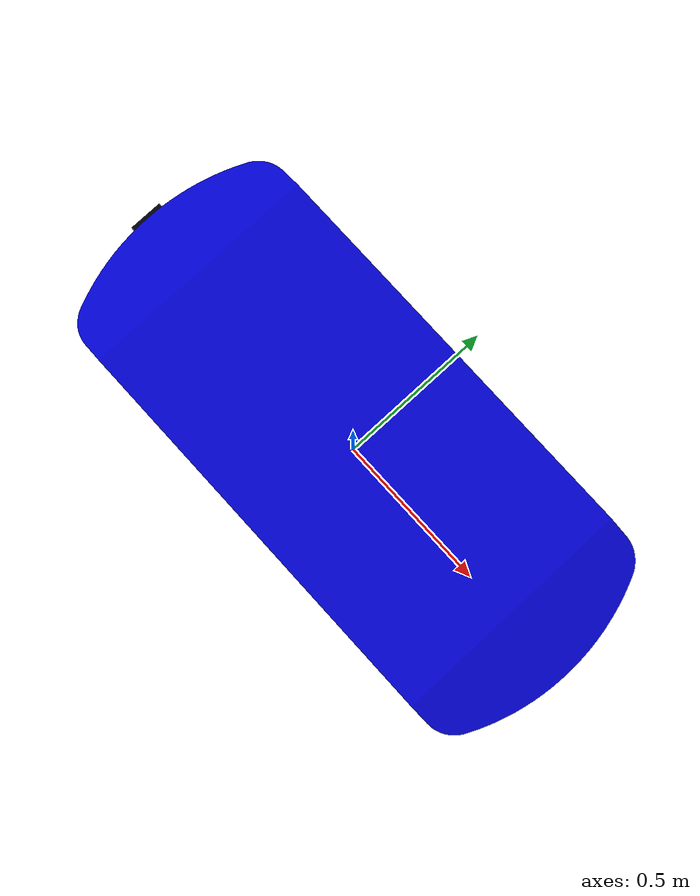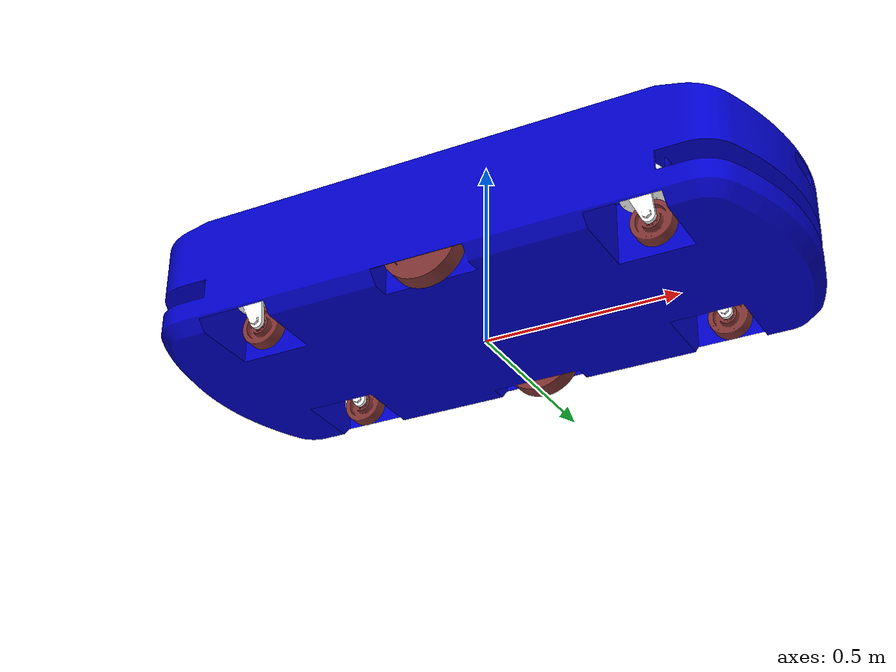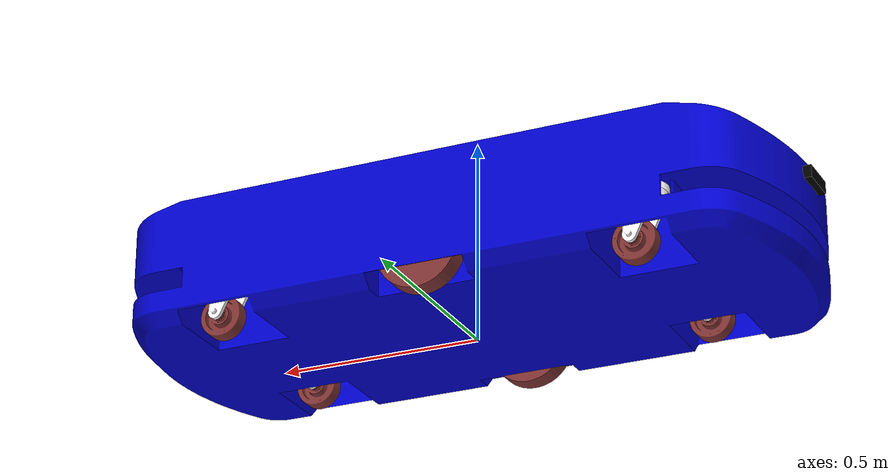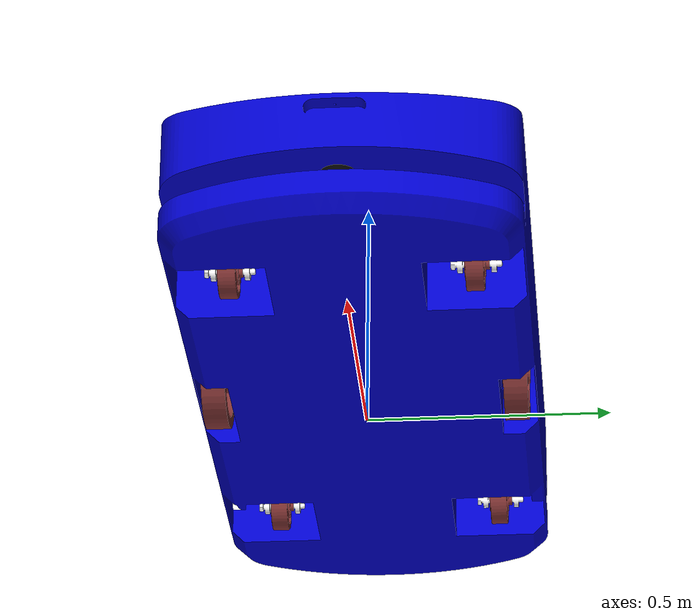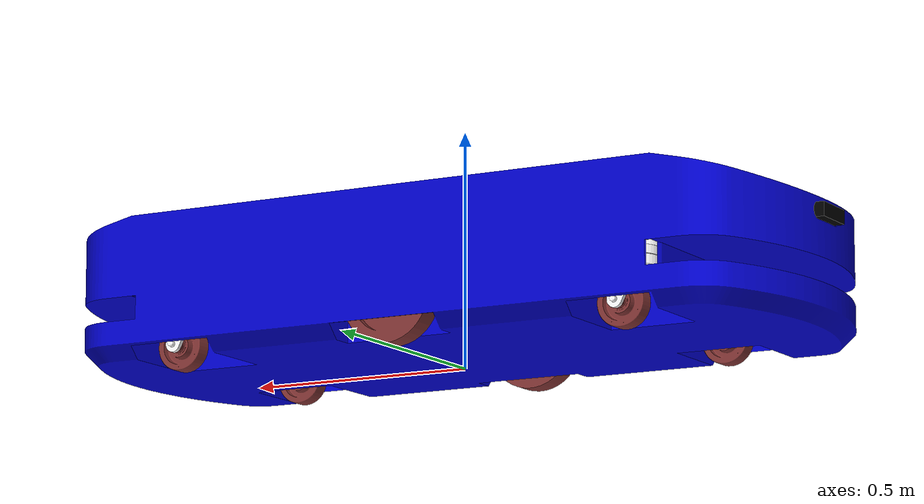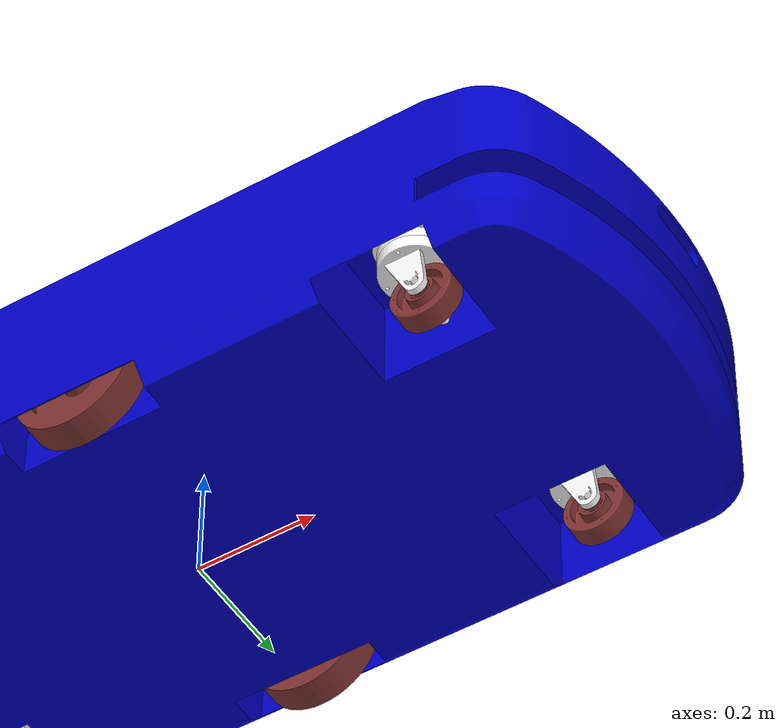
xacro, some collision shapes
<?xml version="1.0"?>
<robot xmlns:xacro="http://www.ros.org/wiki/xacro" name="rabbitamr">

    <xacro:include filename="$(find rabbitamr_description)/urdf/rabbitamr.gazebo.xml"/>

    <xacro:property name="base_width" value="0.7"/>
    <xacro:property name="base_len" value="1.64"/>
    <xacro:property name="base_height" value="0.3"/>
    <xacro:property name="base_distance_from_ground" value="0.021"/>

    <xacro:property name="wheel_radius" value="0.1"/>
    <xacro:property name="wheel_width" value="0.05"/>
    <xacro:property name="wheel_separation" value="0.62"/>

    <xacro:property name="caster_wheel_radius" value="0.05"/>
    <xacro:property name="caster_wheel_width" value="0.05"/>
    <xacro:property name="caster_wheel_mass" value="0.001"/>
    <xacro:property name="caster_wheel_joint_offset" value="0.5125"/>

    <!--Color Properties-->
    <material name="blue">
        <color rgba="0 0 0.8 1"/>
    </material>
    <material name="black">
        <color rgba="0 0 0 1"/>
    </material>
    <material name="white">
        <color rgba="1 1 1 1"/>
    </material>
    <material name="orange">
        <color rgba="0.5 0.2 0.2 1"/>
    </material>

    <!--Interial macros-->
    <xacro:macro name="cylinder_inertia" params="m r h">
        <inertial>
            <mass value="${m}"/>
            <inertia ixx="${m*(3*r*r+h*h)/12}" ixy="0" ixz="0" iyy="${m*(3*r*r+h*h)/12}" iyz="0" izz="${m*r*r/2}"/>
        </inertial>
    </xacro:macro>

    <xacro:macro name="box_inertia" params="m w h d">
        <inertial>
            <mass value="${m}"/>
            <inertia ixx="${m / 12.0 * (d*d + h*h)}" ixy="0.0" ixz="0.0" iyy="${m / 12.0 * (w*w + h*h)}" iyz="0.0"
                     izz="${m / 12.0 * (w*w + d*d)}"/>
        </inertial>
    </xacro:macro>

    <!-- Base footprint is on the ground under the robot -->
    <link name="base_footprint"/>

    <!--Base link-->
    <link name="base_link">
        <xacro:box_inertia m="1" w="${base_len}" h="${base_width}" d="${base_height}"/>
        <visual>
            <geometry>
                <mesh filename="package://rabbitamr_description/meshes/body.stl" scale="0.0001 0.0001 0.0001"/>
            </geometry>
            <material name="blue"/>
        </visual>
        <collision>
            <geometry>
                <mesh filename="package://rabbitamr_description/meshes/body.stl" scale="0.0001 0.0001 0.0001"/>
            </geometry>
        </collision>
    </link>

    <!--base_link - base_footprint Joint-->
    <joint name="base_footprint_joint" type="fixed">
        <origin xyz="0 0 ${base_distance_from_ground + base_height/2}" rpy="0 0 0"/>
        <parent link="base_footprint"/>
        <child link="base_link"/>
    </joint>

    <link name="imu_link"/>
    <joint name="imu_link_joint" type="fixed">
        <origin xyz="0 0 0" rpy="0 0 0"/>
        <parent link="base_link"/>
        <child link="imu_link"/>
    </joint>

    <!--Wheel link & joint macro-->
    <xacro:include filename="$(find rabbitamr_description)/urdf/wheel.urdf.xacro"/>

    <!--Create left and right Wheel links/joints-->
    <xacro:wheel prefix="left" reflect="1"/>
    <xacro:wheel prefix="right" reflect="-1"/>

    <!--Import all caster wheel related links/joints-->
    <xacro:include filename="$(find rabbitamr_description)/urdf/caster_wheel/caster_top_flat.urdf.xacro"/>
    <xacro:include filename="$(find rabbitamr_description)/urdf/caster_wheel/caster_mechanism_top.urdf.xacro"/>
    <xacro:include filename="$(find rabbitamr_description)/urdf/caster_wheel/caster_mechanism_bottom.urdf.xacro"/>
    <xacro:include filename="$(find rabbitamr_description)/urdf/caster_wheel/caster_bottom_flat.urdf.xacro"/>
    <xacro:include filename="$(find rabbitamr_description)/urdf/caster_wheel/caster_wheel_holder.urdf.xacro"/>
    <xacro:include filename="$(find rabbitamr_description)/urdf/caster_wheel/caster_wheel.urdf.xacro"/>

    <!--Create 4 Caster Wheel links & joints-->
    <xacro:macro name="whole_caster_wheel" params="prefix reflect reflect_x">
        <xacro:caster_top_flat prefix="${prefix}" reflect="${reflect}" reflect_x="${reflect_x}"/>
        <xacro:caster_mechanism_top prefix="${prefix}" reflect="${reflect}" reflect_x="${reflect_x}"/>
        <xacro:caster_mechanism_bottom prefix="${prefix}" reflect="${reflect}" reflect_x="${reflect_x}"/>
        <xacro:caster_bottom_flat prefix="${prefix}" reflect="${reflect}" reflect_x="${reflect_x}"/>
        <xacro:caster_wheel_holder prefix="${prefix}" reflect="${reflect}" reflect_x="${reflect_x}"/>
        <xacro:caster_wheel prefix="${prefix}" reflect="${reflect}" reflect_x="${reflect_x}"/>
    </xacro:macro>

    <xacro:whole_caster_wheel prefix="front_left" reflect="1" reflect_x="1"/>
    <xacro:whole_caster_wheel prefix="front_right" reflect="-1" reflect_x="1"/>
    <xacro:whole_caster_wheel prefix="back_left" reflect="1" reflect_x="-1"/>
    <xacro:whole_caster_wheel prefix="back_right" reflect="-1" reflect_x="-1"/>

    <!-- create & add LIDAR -->
    <xacro:include filename="$(find rabbitamr_description)/urdf/accessories/sicklidar.urdf.xacro"/>
    <xacro:sicklidar/>

    <!-- create & add d435i -->
    <xacro:include filename="$(find rabbitamr_description)/urdf/accessories/d435i.urdf.xacro"/>
    <xacro:d435i/>

</robot>

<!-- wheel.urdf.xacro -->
<robot xmlns:xacro="http://www.ros.org/wiki/xacro" name="wheel">

    <xacro:macro name="wheel" params="prefix reflect">
        <link name="${prefix}_wheel">
            <visual>
                <origin xyz="0 0 0" rpy="0 0 0"/>
                <geometry>
                    <mesh filename="package://rabbitamr_description/meshes/wheel.stl" scale="0.0025 0.0025 0.0025"/>
                </geometry>
                <material name="orange"/>
            </visual>
            <collision>
                <origin xyz="0 0 0" rpy="${radians(90)} 0 0"/>
                <geometry>
                    <cylinder radius="${wheel_radius}" length="${wheel_width}"/>
                </geometry>
            </collision>
            <xacro:cylinder_inertia m="1" r="${wheel_radius}" h="${wheel_width}"/>
        </link>

        <joint name="${prefix}_wheel_joint" type="continuous">
            <axis xyz="0 1 0" rpy="0 0 0"/>
            <parent link="base_link"/>
            <child link="${prefix}_wheel"/>
            <origin xyz="0 ${wheel_separation/2 * reflect} ${wheel_radius - base_distance_from_ground - (base_height/2)}"
                    rpy="0 0 0"/>
        </joint>

        <transmission name="${prefix}_wheel_trans" type="SimpleTransmission">
            <type>transmission_interface/SimpleTransmission</type>
            <actuator name="${prefix}_wheel_motor">
                <mechanicalReduction>1</mechanicalReduction>
            </actuator>
            <joint name="${prefix}_wheel_joint">
                <hardwareInterface>hardware_interface/VelocityJointInterface</hardwareInterface>
            </joint>
        </transmission>
    </xacro:macro>
</robot>

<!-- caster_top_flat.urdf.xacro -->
<robot xmlns:xacro="http://www.ros.org/wiki/xacro" name="caster_top_flat">
    <xacro:property name="ctf_scale" value="3.90"/>
    <xacro:macro name="caster_top_flat" params="prefix reflect reflect_x">
        <link name="${prefix}_top_flat">
            <visual>
                <origin xyz="0 0 0" rpy="0 0 0"/>
                <geometry>
                    <mesh filename="package://rabbitamr_description/meshes/caster_wheel/top_flat.stl" scale="${ctf_scale} ${ctf_scale} ${ctf_scale}"/>
                </geometry>
                <material name="white"/>
            </visual>
            <collision>
                <origin xyz="0 0 0" rpy="0 0 0"/>
                <geometry>
                    <box size="0.15 0.15 0.01"/>
                </geometry>
            </collision>
            <xacro:box_inertia m="1" w="0.001" h="0.001" d="0.001"/>
        </link>

        <joint name="${prefix}_top_flat_joint" type="fixed">
            <parent link="base_link"/>
            <child link="${prefix}_top_flat"/>
            <origin xyz="${caster_wheel_joint_offset * reflect_x} ${(wheel_separation/2 - 0.071) * reflect} 0.003525"
                    rpy="0 0 0"/>
        </joint>
    </xacro:macro>
</robot>

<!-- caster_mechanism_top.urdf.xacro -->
<robot xmlns:xacro="http://www.ros.org/wiki/xacro" name="caster_mechanism_top">
    <xacro:property name="cmt_scale" value="0.13"/>
    <xacro:macro name="caster_mechanism_top" params="prefix reflect reflect_x">
        <link name="${prefix}_mechanism_top">
            <visual>
                <origin xyz="0 0 0" rpy="0 0 0"/>
                <geometry>
                    <mesh filename="package://rabbitamr_description/meshes/caster_wheel/mechanism_top.stl" scale="${cmt_scale} ${cmt_scale} ${cmt_scale}"/>
                </geometry>
                <material name="white"/>
            </visual>
            <collision>
                <origin xyz="0 0 0" rpy="0 0 0"/>
                <geometry>
                    <mesh filename="package://rabbitamr_description/meshes/caster_wheel/mechanism_top.stl" scale="${cmt_scale} ${cmt_scale} ${cmt_scale}"/>
                </geometry>
            </collision>
            <xacro:cylinder_inertia m="1" r="0.03" h="0.04"/>
        </link>

        <joint name="${prefix}_mechanism_top_joint" type="continuous">
            <axis xyz="0 0 1" rpy="0 0 0"/>
            <parent link="${prefix}_top_flat"/>
            <child link="${prefix}_mechanism_top"/>
            <origin xyz="0 0 0" rpy="0 0 0"/>
        </joint>
    </xacro:macro>
</robot>

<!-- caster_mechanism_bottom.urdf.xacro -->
<robot xmlns:xacro="http://www.ros.org/wiki/xacro" name="caster__mechanism_bottom">
    <xacro:property name="cmb_scale" value="0.13"/>
    <xacro:macro name="caster_mechanism_bottom" params="prefix reflect reflect_x">
        <link name="${prefix}_mechanism_bottom">
            <visual>
                <origin xyz="0 0 0" rpy="${pi} 0 0"/>
                <geometry>
                    <mesh filename="package://rabbitamr_description/meshes/caster_wheel/mechanism_top.stl" scale="${cmb_scale} ${cmb_scale} ${cmb_scale}"/>
                </geometry>
                <material name="white"/>
            </visual>
            <collision>
                <origin xyz="0 0 0" rpy="${pi} 0 0"/>
                <geometry>
                    <mesh filename="package://rabbitamr_description/meshes/caster_wheel/mechanism_top.stl" scale="${cmb_scale} ${cmb_scale} ${cmb_scale}"/>
                </geometry>
            </collision>
            <xacro:cylinder_inertia m="1" r="0.03" h="0.04"/>
        </link>

        <joint name="${prefix}_mechanism_bottom_joint" type="fixed">
            <parent link="${prefix}_mechanism_top"/>
            <child link="${prefix}_mechanism_bottom"/>
            <origin xyz="0 0.015 -0.0312" rpy="0 0 0"/>
        </joint>
    </xacro:macro>
</robot>

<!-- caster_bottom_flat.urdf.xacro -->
<robot xmlns:xacro="http://www.ros.org/wiki/xacro" name="caster_bottom_flat">
    <xacro:property name="cbf_scale" value="0.026"/>
    <xacro:macro name="caster_bottom_flat" params="prefix reflect reflect_x">
        <link name="${prefix}_bottom_flat">
            <visual>
                <origin xyz="0 0 0" rpy="0 0 0"/>
                <geometry>
                    <mesh filename="package://rabbitamr_description/meshes/caster_wheel/bottom_flat.stl" scale="${cbf_scale} ${cbf_scale} ${cbf_scale}"/>
                </geometry>
                <material name="white"/>
            </visual>
            <collision>
                <origin xyz="0 0 0" rpy="0 0 0"/>
                <geometry>
                    <mesh filename="package://rabbitamr_description/meshes/caster_wheel/bottom_flat.stl" scale="${cbf_scale} ${cbf_scale} ${cbf_scale}"/>
                </geometry>
            </collision>
            <xacro:box_inertia m="1" w="0.001" h="0.001" d="0.001"/>
        </link>

        <joint name="${prefix}_bottom_flat_joint" type="continuous">
            <axis xyz="0 0 1" rpy="0 0 0"/>
            <parent link="${prefix}_mechanism_bottom"/>
            <child link="${prefix}_bottom_flat"/>
            <origin xyz="0 0 0.0026" rpy="0 0 0"/>
        </joint>
    </xacro:macro>
</robot>

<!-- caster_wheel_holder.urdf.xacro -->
<robot xmlns:xacro="http://www.ros.org/wiki/xacro" name="caster_wheel_holder">
    <xacro:property name="cwh_scale" value="0.1014"/>
    <xacro:macro name="caster_wheel_holder" params="prefix reflect reflect_x">
        <link name="${prefix}_wheel_holder">
            <visual>
                <origin xyz="0 0 0" rpy="0 0 0"/>
                <geometry>
                    <mesh filename="package://rabbitamr_description/meshes/caster_wheel/wheel_holder.stl" scale="${cwh_scale} ${cwh_scale} ${cwh_scale}"/>
                </geometry>
                <material name="white"/>
            </visual>
            <collision>
                <origin xyz="0 0 0" rpy="0 0 0"/>
                <geometry>
                    <mesh filename="package://rabbitamr_description/meshes/caster_wheel/wheel_holder.stl" scale="${cwh_scale} ${cwh_scale} ${cwh_scale}"/>
                </geometry>
            </collision>
            <xacro:box_inertia m="1" w="0.001" h="0.001" d="0.001"/>
        </link>

        <joint name="${prefix}_wheel_holder_joint" type="fixed">
            <axis xyz="0 0 1" rpy="0 0 0"/>
            <parent link="${prefix}_bottom_flat"/>
            <child link="${prefix}_wheel_holder"/>
            <origin xyz="0 0 -0.0494" rpy="0 0 0"/>
        </joint>
    </xacro:macro>
</robot>

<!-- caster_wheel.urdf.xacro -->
<robot xmlns:xacro="http://www.ros.org/wiki/xacro" name="caster_wheel">
    <xacro:property name="cw_scale" value="0.1014"/>
    <xacro:macro name="caster_wheel" params="prefix reflect reflect_x">
        <link name="${prefix}_caster_wheel">
            <visual>
                <origin xyz="0 0 0" rpy="0 0 0"/>
                <geometry>
                    <mesh filename="package://rabbitamr_description/meshes/caster_wheel/caster_wheel.stl" scale="${cw_scale} ${cw_scale} ${cw_scale}"/>
                </geometry>
                <material name="orange"/>
            </visual>
            <collision>
                <origin xyz="0 0 0" rpy="${radians(90)} 0 0"/>
                <geometry>
                    <cylinder radius="0.05" length="0.03"/>
                </geometry>
            </collision>
            <xacro:cylinder_inertia m="1" r="0.03" h="0.04"/>
        </link>

        <joint name="${prefix}_caster_wheel_joint" type="continuous">
            <axis xyz="0 1 0" rpy="0 0 0"/>
            <parent link="${prefix}_wheel_holder"/>
            <child link="${prefix}_caster_wheel"/>
            <origin xyz="0.0195 0 -0.044525" rpy="0 0 0"/>
        </joint>
    </xacro:macro>

</robot>

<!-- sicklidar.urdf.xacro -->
<robot xmlns:xacro="http://www.ros.org/wiki/xacro" name="sensor_laser">

    <xacro:property name="sl_scale" value="0.0025"/>
    <xacro:property name="laser_size_x" value="0.1"/>
    <xacro:property name="laser_size_y" value="0.1"/>
    <xacro:property name="laser_size_z" value="0.18"/>
    <xacro:property name="laser_origin_x" value="${(base_len/2 - 0.15) + laser_size_x/2}"/>
    <xacro:property name="laser_origin_y" value="0"/>
    <xacro:property name="laser_origin_z" value="${-laser_size_z/4}"/>

    <xacro:macro name="sicklidar">
        <link name="sicklidar">
            <visual>
                <origin xyz="0 0 ${laser_size_z/2 - 0.02}" rpy="${radians(180)} 0 0"/>
                <geometry>
                    <mesh filename="package://rabbitamr_description/meshes/accessories/laser_scanner.stl" scale="${sl_scale} ${sl_scale} ${sl_scale}"/>
                </geometry>
                <material name="black"/>
            </visual>
            <collision>
                <origin xyz="0 0 0" rpy="${radians(180)} 0 0"/>
                <geometry>
                    <box size="${laser_size_x} ${laser_size_y} ${laser_size_z}"/>
                </geometry>
            </collision>
            <xacro:box_inertia m="0.2" w="${laser_size_x}" h="${laser_size_y}" d="${laser_size_z}"/>
        </link>

        <joint name="sicklidar_joint" type="fixed">
            <origin xyz="${laser_origin_x} ${laser_origin_y} ${laser_origin_z}" rpy="0 0 0"/>
            <parent link="base_link"/>
            <child link="sicklidar"/>
        </joint>
    </xacro:macro>

</robot>

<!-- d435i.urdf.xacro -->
<robot xmlns:xacro="http://www.ros.org/wiki/xacro" name="sensor_camera">

    <xacro:property name="sl_scale" value="1.0"/>
    <xacro:property name="camera_size_x" value="0.03"/>
    <xacro:property name="camera_size_y" value="0.1"/>
    <xacro:property name="camera_size_z" value="0.03"/>
    <xacro:property name="camera_origin_x" value="-${(base_len/2)}"/>
    <xacro:property name="camera_origin_y" value="0"/>
    <xacro:property name="camera_origin_z" value="0.0725"/>

    <xacro:macro name="d435i">
        <link name="d435i">
            <visual>
                <origin xyz="0 0 0" rpy="${radians(90)} 0 ${radians(90)}"/>
                <geometry>
                    <mesh filename="package://rabbitamr_description/meshes/accessories/d435i.dae" scale="${sl_scale} ${sl_scale} ${sl_scale}"/>
                </geometry>
                <material name="black"/>
            </visual>
            <collision>
                <origin xyz="0 0 0" rpy="0 0 0"/>
                <geometry>
                    <box size="${camera_size_x} ${camera_size_y} ${camera_size_z}"/>
                </geometry>
            </collision>
            <xacro:box_inertia m="0.1" w="${camera_size_x}" h="${camera_size_y}" d="${camera_size_z}"/>
        </link>

        <joint name="d435i_joint" type="fixed">
            <origin xyz="${camera_origin_x} ${camera_origin_y} ${camera_origin_z}" rpy="0 0 ${radians(180)}"/>
            <parent link="base_link"/>
            <child link="d435i"/>
        </joint>

    </xacro:macro>

</robot>
